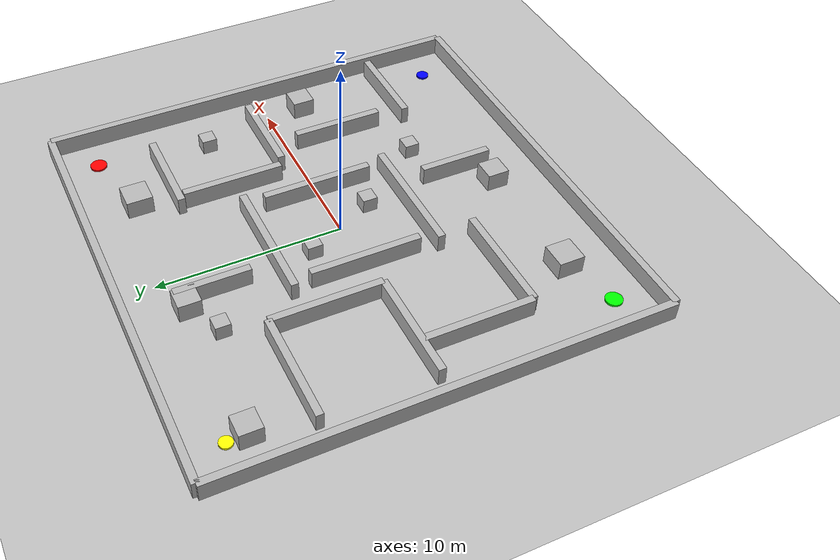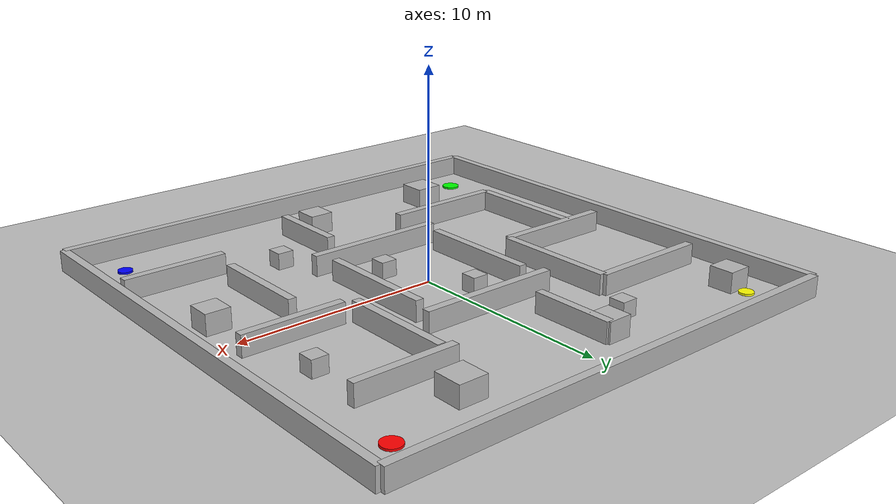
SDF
<?xml version="1.0" ?>
<sdf version="1.8">
  <world name="tfg_complex_world">

        <plugin filename="libgz-sim-physics-system.so"
            name="gz::sim::systems::Physics">
    </plugin>

    <plugin filename="libgz-sim-user-commands-system.so"
            name="gz::sim::systems::UserCommands">
    </plugin>

    <plugin filename="libgz-sim-scene-broadcaster-system.so"
            name="gz::sim::systems::SceneBroadcaster">
    </plugin>

    <plugin filename="libgz-sim-sensors-system.so"
            name="gz::sim::systems::Sensors">
      <render_engine>ogre</render_engine>
    </plugin>
    <!-- Luz -->
    <light type="directional" name="sun">
      <pose>0 0 12 0 0 0</pose>
      <diffuse>0.8 0.8 0.8 1</diffuse>
      <specular>0.2 0.2 0.2 1</specular>
      <direction>-0.5 0.1 -0.9</direction>
    </light>

    <!-- Suelo -->
    <model name="ground_plane">
      <static>true</static>
      <link name="link">
        <collision name="collision">
          <geometry>
            <plane>
              <normal>0 0 1</normal>
              <size>30 30</size>
            </plane>
          </geometry>
        </collision>
        <visual name="visual">
          <geometry>
            <plane>
              <normal>0 0 1</normal>
              <size>30 30</size>
            </plane>
          </geometry>
          <material>
            <ambient>0.75 0.75 0.75 1</ambient>
            <diffuse>0.75 0.75 0.75 1</diffuse>
          </material>
        </visual>
      </link>
    </model>

    <!-- Paredes exteriores -->
    <model name="wall_top">
      <static>true</static>
      <pose>0 12 0.5 0 0 0</pose>
      <link name="link">
        <collision name="collision"><geometry><box><size>24 0.4 1</size></box></geometry></collision>
        <visual name="visual"><geometry><box><size>24 0.4 1</size></box></geometry></visual>
      </link>
    </model>

    <model name="wall_bottom">
      <static>true</static>
      <pose>0 -12 0.5 0 0 0</pose>
      <link name="link">
        <collision name="collision"><geometry><box><size>24 0.4 1</size></box></geometry></collision>
        <visual name="visual"><geometry><box><size>24 0.4 1</size></box></geometry></visual>
      </link>
    </model>

    <model name="wall_left">
      <static>true</static>
      <pose>-12 0 0.5 0 0 0</pose>
      <link name="link">
        <collision name="collision"><geometry><box><size>0.4 24 1</size></box></geometry></collision>
        <visual name="visual"><geometry><box><size>0.4 24 1</size></box></geometry></visual>
      </link>
    </model>

    <model name="wall_right">
      <static>true</static>
      <pose>12 0 0.5 0 0 0</pose>
      <link name="link">
        <collision name="collision"><geometry><box><size>0.4 24 1</size></box></geometry></collision>
        <visual name="visual"><geometry><box><size>0.4 24 1</size></box></geometry></visual>
      </link>
    </model>

    <!-- Zona izquierda: pasillos tipo laberinto -->
    <model name="maze_wall_1">
      <static>true</static>
      <pose>-8 6 0.5 0 0 0</pose>
      <link name="link">
        <collision name="collision"><geometry><box><size>6 0.4 1</size></box></geometry></collision>
        <visual name="visual"><geometry><box><size>6 0.4 1</size></box></geometry></visual>
      </link>
    </model>

    <model name="maze_wall_2">
      <static>true</static>
      <pose>-5 3 0.5 0 0 0</pose>
      <link name="link">
        <collision name="collision"><geometry><box><size>0.4 6 1</size></box></geometry></collision>
        <visual name="visual"><geometry><box><size>0.4 6 1</size></box></geometry></visual>
      </link>
    </model>

    <model name="maze_wall_3">
      <static>true</static>
      <pose>-8 0 0.5 0 0 0</pose>
      <link name="link">
        <collision name="collision"><geometry><box><size>6 0.4 1</size></box></geometry></collision>
        <visual name="visual"><geometry><box><size>6 0.4 1</size></box></geometry></visual>
      </link>
    </model>

    <model name="maze_wall_4">
      <static>true</static>
      <pose>-9 -3 0.5 0 0 0</pose>
      <link name="link">
        <collision name="collision"><geometry><box><size>0.4 6 1</size></box></geometry></collision>
        <visual name="visual"><geometry><box><size>0.4 6 1</size></box></geometry></visual>
      </link>
    </model>

    <model name="maze_wall_5">
      <static>true</static>
      <pose>-6 -6 0.5 0 0 0</pose>
      <link name="link">
        <collision name="collision"><geometry><box><size>6 0.4 1</size></box></geometry></collision>
        <visual name="visual"><geometry><box><size>6 0.4 1</size></box></geometry></visual>
      </link>
    </model>

    <!-- Zona central: obstáculos que obligan a rodear -->
    <model name="central_wall_1">
      <static>true</static>
      <pose>0 4 0.5 0 0 0</pose>
      <link name="link">
        <collision name="collision"><geometry><box><size>7 0.4 1</size></box></geometry></collision>
        <visual name="visual"><geometry><box><size>7 0.4 1</size></box></geometry></visual>
      </link>
    </model>

    <model name="central_wall_2">
      <static>true</static>
      <pose>0 -4 0.5 0 0 0</pose>
      <link name="link">
        <collision name="collision"><geometry><box><size>7 0.4 1</size></box></geometry></collision>
        <visual name="visual"><geometry><box><size>7 0.4 1</size></box></geometry></visual>
      </link>
    </model>

    <model name="central_wall_3">
      <static>true</static>
      <pose>-3 0 0.5 0 0 0</pose>
      <link name="link">
        <collision name="collision"><geometry><box><size>0.4 6 1</size></box></geometry></collision>
        <visual name="visual"><geometry><box><size>0.4 6 1</size></box></geometry></visual>
      </link>
    </model>

    <model name="central_wall_4">
      <static>true</static>
      <pose>3 0 0.5 0 0 0</pose>
      <link name="link">
        <collision name="collision"><geometry><box><size>0.4 6 1</size></box></geometry></collision>
        <visual name="visual"><geometry><box><size>0.4 6 1</size></box></geometry></visual>
      </link>
    </model>

    <!-- Aperturas indirectas / desvíos -->
    <model name="detour_wall_1">
      <static>true</static>
      <pose>-1.5 7.5 0.5 0 0 0</pose>
      <link name="link">
        <collision name="collision"><geometry><box><size>0.4 4 1</size></box></geometry></collision>
        <visual name="visual"><geometry><box><size>0.4 4 1</size></box></geometry></visual>
      </link>
    </model>

    <model name="detour_wall_2">
      <static>true</static>
      <pose>1.5 -7.5 0.5 0 0 0</pose>
      <link name="link">
        <collision name="collision"><geometry><box><size>0.4 4 1</size></box></geometry></collision>
        <visual name="visual"><geometry><box><size>0.4 4 1</size></box></geometry></visual>
      </link>
    </model>

    <!-- Zona derecha: rutas alternativas -->
    <model name="right_wall_1">
      <static>true</static>
      <pose>7 7 0.5 0 0 0</pose>
      <link name="link">
        <collision name="collision"><geometry><box><size>5 0.4 1</size></box></geometry></collision>
        <visual name="visual"><geometry><box><size>5 0.4 1</size></box></geometry></visual>
      </link>
    </model>

    <model name="right_wall_2">
      <static>true</static>
      <pose>5 4 0.5 0 0 0</pose>
      <link name="link">
        <collision name="collision"><geometry><box><size>0.4 5.5 1</size></box></geometry></collision>
        <visual name="visual"><geometry><box><size>0.4 5.5 1</size></box></geometry></visual>
      </link>
    </model>

    <model name="right_wall_3">
      <static>true</static>
      <pose>8 1 0.5 0 0 0</pose>
      <link name="link">
        <collision name="collision"><geometry><box><size>5 0.4 1</size></box></geometry></collision>
        <visual name="visual"><geometry><box><size>5 0.4 1</size></box></geometry></visual>
      </link>
    </model>

    <model name="right_wall_4">
      <static>true</static>
      <pose>7 -3 0.5 0 0 0</pose>
      <link name="link">
        <collision name="collision"><geometry><box><size>0.4 5 1</size></box></geometry></collision>
        <visual name="visual"><geometry><box><size>0.4 5 1</size></box></geometry></visual>
      </link>
    </model>

    <model name="right_wall_5">
      <static>true</static>
      <pose>9 -7 0.5 0 0 0</pose>
      <link name="link">
        <collision name="collision"><geometry><box><size>5 0.4 1</size></box></geometry></collision>
        <visual name="visual"><geometry><box><size>5 0.4 1</size></box></geometry></visual>
      </link>
    </model>

    <!-- Obstáculos aislados -->
    <model name="box_obstacle_1">
      <static>true</static>
      <pose>-10 9 0.5 0 0 0</pose>
      <link name="link">
        <collision name="collision"><geometry><box><size>1.2 1.2 1</size></box></geometry></collision>
        <visual name="visual"><geometry><box><size>1.2 1.2 1</size></box></geometry></visual>
      </link>
    </model>

    <model name="box_obstacle_2">
      <static>true</static>
      <pose>-2 9 0.5 0 0 0</pose>
      <link name="link">
        <collision name="collision"><geometry><box><size>1.2 1.2 1</size></box></geometry></collision>
        <visual name="visual"><geometry><box><size>1.2 1.2 1</size></box></geometry></visual>
      </link>
    </model>

    <model name="box_obstacle_3">
      <static>true</static>
      <pose>-7 -9 0.5 0 0 0</pose>
      <link name="link">
        <collision name="collision"><geometry><box><size>1.4 1.4 1</size></box></geometry></collision>
        <visual name="visual"><geometry><box><size>1.4 1.4 1</size></box></geometry></visual>
      </link>
    </model>

    <model name="box_obstacle_4">
      <static>true</static>
      <pose>0 -9 0.5 0 0 0</pose>
      <link name="link">
        <collision name="collision"><geometry><box><size>1.2 1.2 1</size></box></geometry></collision>
        <visual name="visual"><geometry><box><size>1.2 1.2 1</size></box></geometry></visual>
      </link>
    </model>

    <model name="box_obstacle_5">
      <static>true</static>
      <pose>6 9 0.5 0 0 0</pose>
      <link name="link">
        <collision name="collision"><geometry><box><size>1.4 1.4 1</size></box></geometry></collision>
        <visual name="visual"><geometry><box><size>1.4 1.4 1</size></box></geometry></visual>
      </link>
    </model>

    <model name="box_obstacle_6">
      <static>true</static>
      <pose>10 -2 0.5 0 0 0</pose>
      <link name="link">
        <collision name="collision"><geometry><box><size>1.2 1.2 1</size></box></geometry></collision>
        <visual name="visual"><geometry><box><size>1.2 1.2 1</size></box></geometry></visual>
      </link>
    </model>

    <!-- Obstáculos pequeños para estrechar pasos -->
    <model name="small_box_1">
      <static>true</static>
      <pose>-4 8 0.4 0 0 0</pose>
      <link name="link">
        <collision name="collision"><geometry><box><size>0.8 0.8 0.8</size></box></geometry></collision>
        <visual name="visual"><geometry><box><size>0.8 0.8 0.8</size></box></geometry></visual>
      </link>
    </model>

    <model name="small_box_2">
      <static>true</static>
      <pose>-1 2 0.4 0 0 0</pose>
      <link name="link">
        <collision name="collision"><geometry><box><size>0.8 0.8 0.8</size></box></geometry></collision>
        <visual name="visual"><geometry><box><size>0.8 0.8 0.8</size></box></geometry></visual>
      </link>
    </model>

    <model name="small_box_3">
      <static>true</static>
      <pose>1 -2 0.4 0 0 0</pose>
      <link name="link">
        <collision name="collision"><geometry><box><size>0.8 0.8 0.8</size></box></geometry></collision>
        <visual name="visual"><geometry><box><size>0.8 0.8 0.8</size></box></geometry></visual>
      </link>
    </model>

    <model name="small_box_4">
      <static>true</static>
      <pose>4 -6 0.4 0 0 0</pose>
      <link name="link">
        <collision name="collision"><geometry><box><size>0.8 0.8 0.8</size></box></geometry></collision>
        <visual name="visual"><geometry><box><size>0.8 0.8 0.8</size></box></geometry></visual>
      </link>
    </model>

    <model name="small_box_5">
      <static>true</static>
      <pose>9 4 0.4 0 0 0</pose>
      <link name="link">
        <collision name="collision"><geometry><box><size>0.8 0.8 0.8</size></box></geometry></collision>
        <visual name="visual"><geometry><box><size>0.8 0.8 0.8</size></box></geometry></visual>
      </link>
    </model>

    <!-- Marcador de inicio -->
    <model name="start_marker">
      <static>true</static>
      <pose>-10 -10 0.05 0 0 0</pose>
      <link name="link">
        <visual name="visual">
          <geometry>
            <cylinder>
              <radius>0.45</radius>
              <length>0.1</length>
            </cylinder>
          </geometry>
          <material>
            <ambient>0 1 0 1</ambient>
            <diffuse>0 1 0 1</diffuse>
          </material>
        </visual>
      </link>
    </model>

    <!-- Objetivo principal -->
    <model name="goal_marker">
      <static>true</static>
      <pose>10 10 0.05 0 0 0</pose>
      <link name="link">
        <visual name="visual">
          <geometry>
            <cylinder>
              <radius>0.45</radius>
              <length>0.1</length>
            </cylinder>
          </geometry>
          <material>
            <ambient>1 0 0 1</ambient>
            <diffuse>1 0 0 1</diffuse>
          </material>
        </visual>
      </link>
    </model>

    <!-- Objetivo alternativo 1 -->
    <model name="goal_marker_2">
      <static>true</static>
      <pose>10 -10 0.05 0 0 0</pose>
      <link name="link">
        <visual name="visual">
          <geometry>
            <cylinder>
              <radius>0.35</radius>
              <length>0.1</length>
            </cylinder>
          </geometry>
          <material>
            <ambient>0 0 1 1</ambient>
            <diffuse>0 0 1 1</diffuse>
          </material>
        </visual>
      </link>
    </model>

    <!-- Objetivo alternativo 2 -->
    <model name="goal_marker_3">
      <static>true</static>
      <pose>-10 10 0.05 0 0 0</pose>
      <link name="link">
        <visual name="visual">
          <geometry>
            <cylinder>
              <radius>0.35</radius>
              <length>0.1</length>
            </cylinder>
          </geometry>
          <material>
            <ambient>1 1 0 1</ambient>
            <diffuse>1 1 0 1</diffuse>
          </material>
        </visual>
      </link>
    </model>

  </world>
</sdf>
